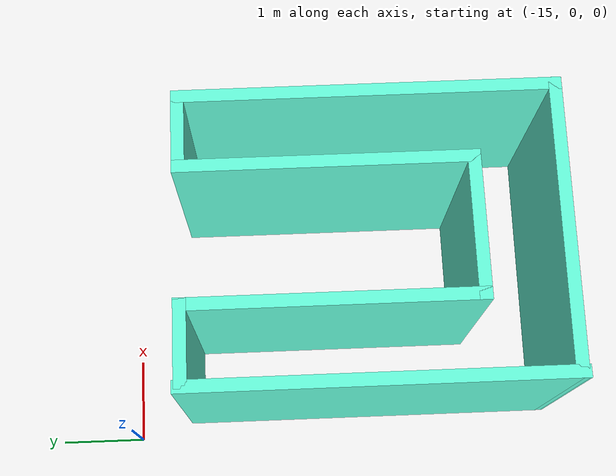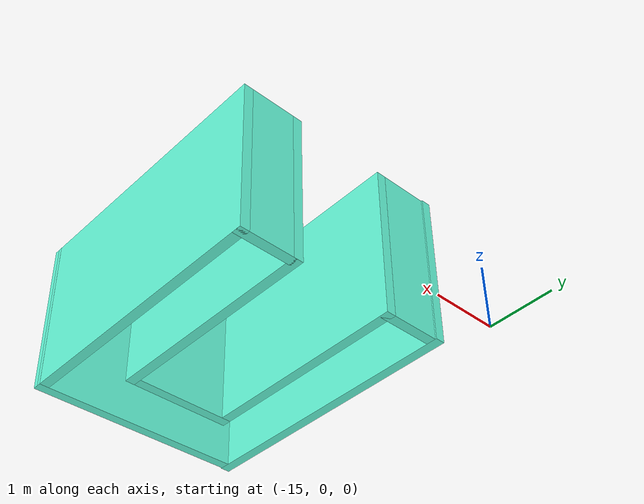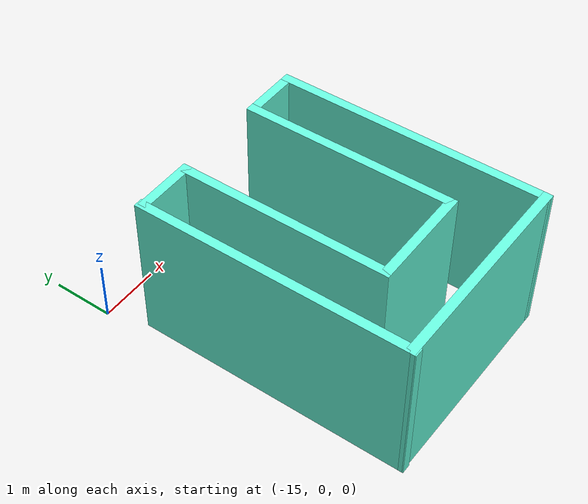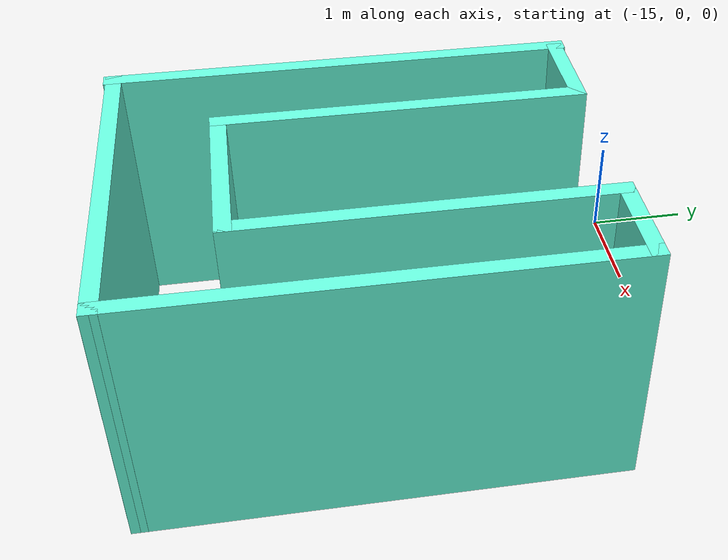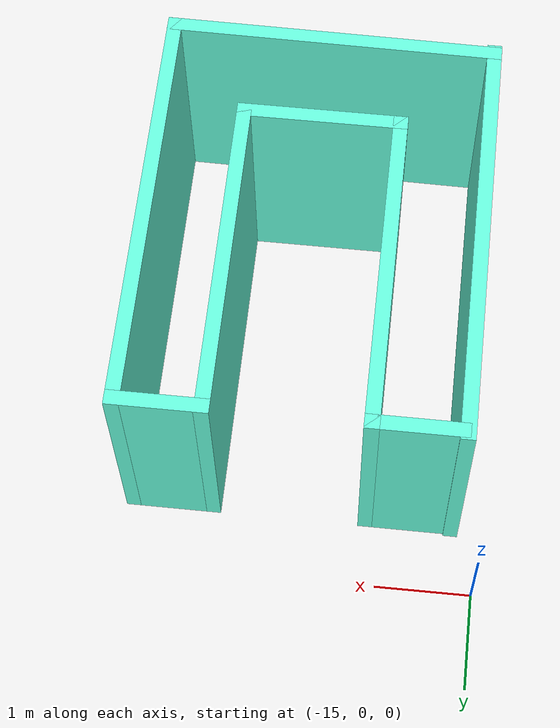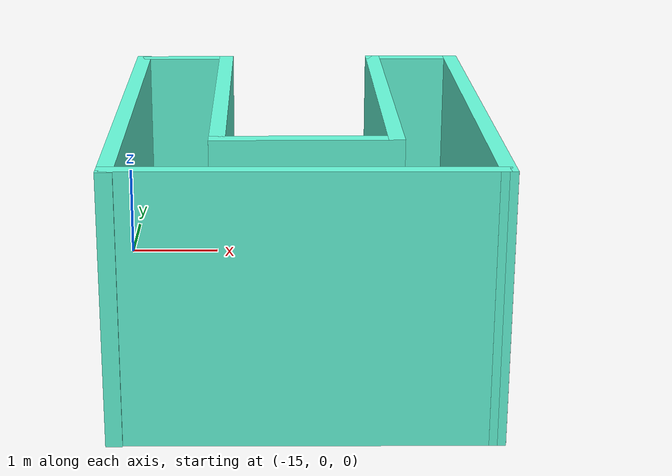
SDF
<?xml version='1.0'?>
<sdf version='1.6'>
  <model name='mybuilding'>
    <pose frame=''>-13.065 -2.89544 0 0 -0 0</pose>
    <link name='Wall_2'>
      <collision name='Wall_2_Collision'>
        <geometry>
          <box>
            <size>1 0.15 2.5</size>
          </box>
        </geometry>
        <pose frame=''>0 0 1.25 0 -0 0</pose>
      </collision>
      <visual name='Wall_2_Visual'>
        <pose frame=''>0 0 1.25 0 -0 0</pose>
        <geometry>
          <box>
            <size>1 0.15 2.5</size>
          </box>
        </geometry>
        <material>
          <script>
            <uri>file://media/materials/scripts/gazebo.material</uri>
            <name>Gazebo/Grey</name>
          </script>
          <ambient>0.403922 1 0.870588 1</ambient>
        </material>
        <meta>
          <layer>0</layer>
        </meta>
      </visual>
      <pose frame=''>-1.2 2.16544 0 0 -0 0</pose>
    </link>
    <link name='Wall_3'>
      <collision name='Wall_3_Collision'>
        <geometry>
          <box>
            <size>3.5 0.15 2.5</size>
          </box>
        </geometry>
        <pose frame=''>0 0 1.25 0 -0 0</pose>
      </collision>
      <visual name='Wall_3_Visual'>
        <pose frame=''>0 0 1.25 0 -0 0</pose>
        <geometry>
          <box>
            <size>3.5 0.15 2.5</size>
          </box>
        </geometry>
        <material>
          <script>
            <uri>file://media/materials/scripts/gazebo.material</uri>
            <name>Gazebo/Grey</name>
          </script>
          <ambient>0.403922 1 0.870588 1</ambient>
        </material>
        <meta>
          <layer>0</layer>
        </meta>
      </visual>
      <pose frame=''>-0.775001 0.490444 0 0 0 -1.5708</pose>
    </link>
    <link name='Wall_4'>
      <collision name='Wall_4_Collision'>
        <geometry>
          <box>
            <size>1.75 0.15 2.5</size>
          </box>
        </geometry>
        <pose frame=''>0 0 1.25 0 -0 0</pose>
      </collision>
      <visual name='Wall_4_Visual'>
        <pose frame=''>0 0 1.25 0 -0 0</pose>
        <geometry>
          <box>
            <size>1.75 0.15 2.5</size>
          </box>
        </geometry>
        <material>
          <script>
            <uri>file://media/materials/scripts/gazebo.material</uri>
            <name>Gazebo/Grey</name>
          </script>
          <ambient>0.403922 1 0.870588 1</ambient>
        </material>
        <meta>
          <layer>0</layer>
        </meta>
      </visual>
      <pose frame=''>0.025 -1.18456 0 0 -0 0</pose>
    </link>
    <link name='Wall_5'>
      <collision name='Wall_5_Collision'>
        <geometry>
          <box>
            <size>3.5 0.15 2.5</size>
          </box>
        </geometry>
        <pose frame=''>0 0 1.25 0 -0 0</pose>
      </collision>
      <visual name='Wall_5_Visual'>
        <pose frame=''>0 0 1.25 0 -0 0</pose>
        <geometry>
          <box>
            <size>3.5 0.15 2.5</size>
          </box>
        </geometry>
        <material>
          <script>
            <uri>file://media/materials/scripts/gazebo.material</uri>
            <name>Gazebo/Grey</name>
          </script>
          <ambient>0.403922 1 0.870588 1</ambient>
        </material>
        <meta>
          <layer>0</layer>
        </meta>
      </visual>
      <pose frame=''>0.825 0.490444 0 0 -0 1.5708</pose>
    </link>
    <link name='Wall_6'>
      <collision name='Wall_6_Collision'>
        <geometry>
          <box>
            <size>1 0.15 2.5</size>
          </box>
        </geometry>
        <pose frame=''>0 0 1.25 0 -0 0</pose>
      </collision>
      <visual name='Wall_6_Visual'>
        <pose frame=''>0 0 1.25 0 -0 0</pose>
        <geometry>
          <box>
            <size>1 0.15 2.5</size>
          </box>
        </geometry>
        <material>
          <script>
            <uri>file://media/materials/scripts/gazebo.material</uri>
            <name>Gazebo/Grey</name>
          </script>
          <ambient>0.403922 1 0.870588 1</ambient>
        </material>
        <meta>
          <layer>0</layer>
        </meta>
      </visual>
      <pose frame=''>1.25 2.16544 0 0 -0 0</pose>
    </link>
    <link name='Wall_7'>
      <collision name='Wall_7_Collision'>
        <geometry>
          <box>
            <size>4.5 0.15 2.5</size>
          </box>
        </geometry>
        <pose frame=''>0 0 1.25 0 -0 0</pose>
      </collision>
      <visual name='Wall_7_Visual'>
        <pose frame=''>0 0 1.25 0 -0 0</pose>
        <geometry>
          <box>
            <size>4.5 0.15 2.5</size>
          </box>
        </geometry>
        <material>
          <script>
            <uri>file://media/materials/scripts/gazebo.material</uri>
            <name>Gazebo/Grey</name>
          </script>
          <ambient>0.403922 1 0.870588 1</ambient>
        </material>
        <meta>
          <layer>0</layer>
        </meta>
      </visual>
      <pose frame=''>1.675 -0.009556 0 0 0 -1.5708</pose>
    </link>
    <link name='Wall_8'>
      <collision name='Wall_8_Collision'>
        <geometry>
          <box>
            <size>3.5 0.15 2.5</size>
          </box>
        </geometry>
        <pose frame=''>0 0 1.25 0 -0 0</pose>
      </collision>
      <visual name='Wall_8_Visual'>
        <pose frame=''>0 0 1.25 0 -0 0</pose>
        <geometry>
          <box>
            <size>3.5 0.15 2.5</size>
          </box>
        </geometry>
        <material>
          <script>
            <uri>file://media/materials/scripts/gazebo.material</uri>
            <name>Gazebo/Grey</name>
          </script>
          <ambient>0.403922 1 0.870588 1</ambient>
        </material>
        <meta>
          <layer>0</layer>
        </meta>
      </visual>
      <pose frame=''>0 -2.16456 0 0 -0 3.12965</pose>
    </link>
    <link name='Wall_9'>
      <collision name='Wall_9_Collision'>
        <geometry>
          <box>
            <size>4.5 0.15 2.5</size>
          </box>
        </geometry>
        <pose frame=''>0 0 1.25 0 -0 0</pose>
      </collision>
      <visual name='Wall_9_Visual'>
        <pose frame=''>0 0 1.25 0 -0 0</pose>
        <geometry>
          <box>
            <size>4.5 0.15 2.5</size>
          </box>
        </geometry>
        <material>
          <script>
            <uri>file://media/materials/scripts/gazebo.material</uri>
            <name>Gazebo/Grey</name>
          </script>
          <ambient>0.403922 1 0.870588 1</ambient>
        </material>
        <meta>
          <layer>0</layer>
        </meta>
      </visual>
      <pose frame=''>-1.675 0.010444 0 0 -0 1.5708</pose>
    </link>
    <static>1</static>
  </model>
</sdf>
